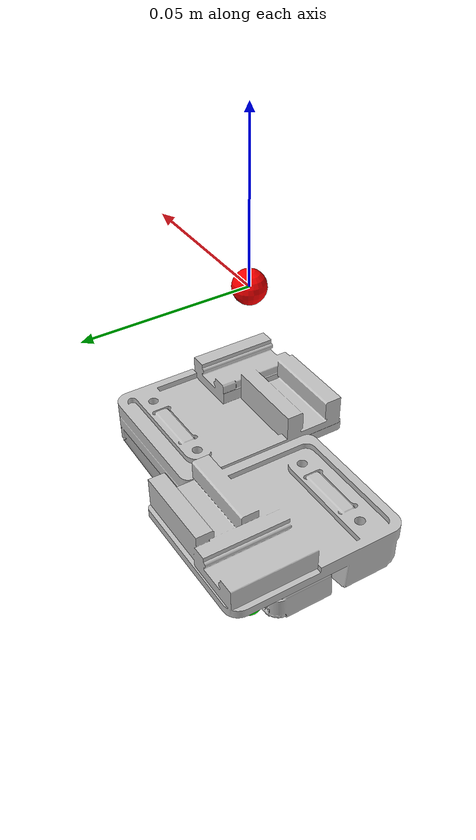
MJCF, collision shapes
<mujoco model="crank_4310_d405">
  <compiler angle="radian" meshdir="assets"/>

  <asset>
    <mesh name="gripper" file="gripper.stl"/>
    <mesh name="tip_left" file="tip_left.stl"/>
    <mesh name="tip_right" file="tip_right.stl"/>
    <mesh name="camera_bracket_for_D405_crank_4310_" file="d405/camera_bracket_for_D405_crank_4310_.stl"/>
    <mesh name="Cable_holder" file="d405/Cable_holder.stl"/>
    <mesh name="D405_with_depth_" file="d405/D405_with_depth_.stl"/>
  </asset>

  <worldbody>
    <body name="gripper" pos="0 0 0" quat="0.5 0.5 -0.5 -0.5">
      <inertial pos="0 -0.027 0" mass="0.45" diaginertia="0.0005 0.0004 0.0003"/>
      <geom pos="0 0.110597 -0.164101" quat="1 0 0 0" type="mesh" rgba="1 0.6 0 1" mesh="gripper" contype="0" conaffinity="0"/>
      <!-- Intel RealSense D405 on its bracket, rigidly fastened to the gripper. -->
      <geom pos="-0.0353000156 -0.0504999844 0.0503998438" quat="0.707106781 -2.59734824e-06 0 0.707106781" type="mesh" rgba="0.615686 0.811765 0.929412 1" mesh="camera_bracket_for_D405_crank_4310_" contype="0" conaffinity="0"/>
      <geom pos="-0.0277004774 -0.0581586026 0.17612101" quat="0.153045262 -0.690346235 0.690345673 0.153042726" type="mesh" rgba="0.647059 0.647059 0.647059 1" mesh="Cable_holder" contype="0" conaffinity="0"/>
      <geom pos="-0.0107000691 -0.0660205952 0.0797288734" quat="1.09768443e-06 2.35399277e-06 -0.34202201 -0.939691941" type="mesh" rgba="0.615686 0.811765 0.929412 1" mesh="D405_with_depth_" contype="0" conaffinity="0"/>
      <site name="tcp_site" pos="0 0 0" quat="0.5 0.5 0.5 -0.5" size="0.005" rgba="1 0 0 1"/>
      <site name="grasp_site" pos="0 -0.1347 0" quat="0.5 0.5 0.5 -0.5" size="0.005" rgba="0 1 0 1"/>
      <body name="tip_left" pos="-0.037 -0.0605 0.0392" quat="1 0 0 0">
        <inertial pos="0.03 -0.04 -0.039" mass="0.075" diaginertia="6e-5 6e-5 3e-5"/>
        <joint name="joint7" pos="0 0 0" type="slide" axis="1 0 0" range="0 0.039574"/>
        <geom pos="0.03495 0.171097 -0.203301" quat="1 0 0 0" type="mesh" rgba="0.74902 0.74902 0.74902 1" mesh="tip_left"/>
      </body>
      <body name="tip_right" pos="0.037 -0.0605 -0.0392" quat="1 0 0 0">
        <inertial pos="-0.03 -0.04 0.039" mass="0.075" diaginertia="6e-5 6e-5 3e-5"/>
        <joint name="joint8" pos="0 0 0" type="slide" axis="-1 0 0" range="0 0.039574"/>
        <geom pos="-0.03495 0.171097 -0.124901" quat="1 0 0 0" type="mesh" rgba="0.74902 0.74902 0.74902 1" mesh="tip_right"/>
      </body>
      <body name="camera" pos="-0.0017 -0.066021 0.079729" quat="0 0 0.93968809 -0.3420326">
        <inertial pos="0 0 0" quat="1 0 0 0" mass="1e-09" diaginertia="4e-14 4e-14 4e-14"/>
      </body>
    </body>
  </worldbody>

  <equality>
    <joint joint1="joint7" joint2="joint8" polycoef="0 1 0 0 0"/>
  </equality>

  <contact>
    <exclude body1="gripper" body2="tip_left"/>
    <exclude body1="gripper" body2="tip_right"/>
    <exclude body1="tip_left" body2="tip_right"/>
  </contact>
</mujoco>
